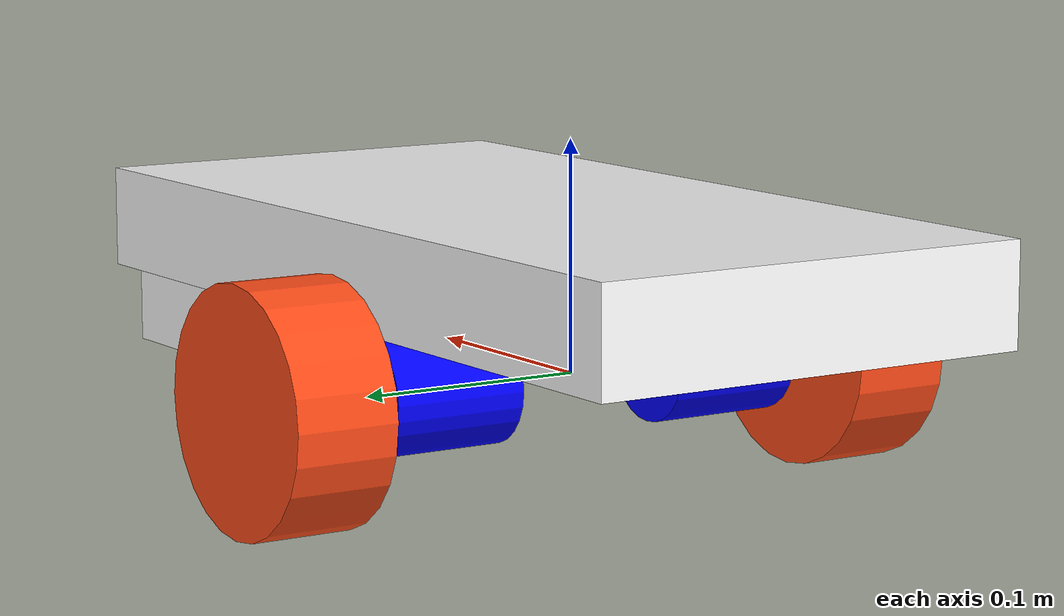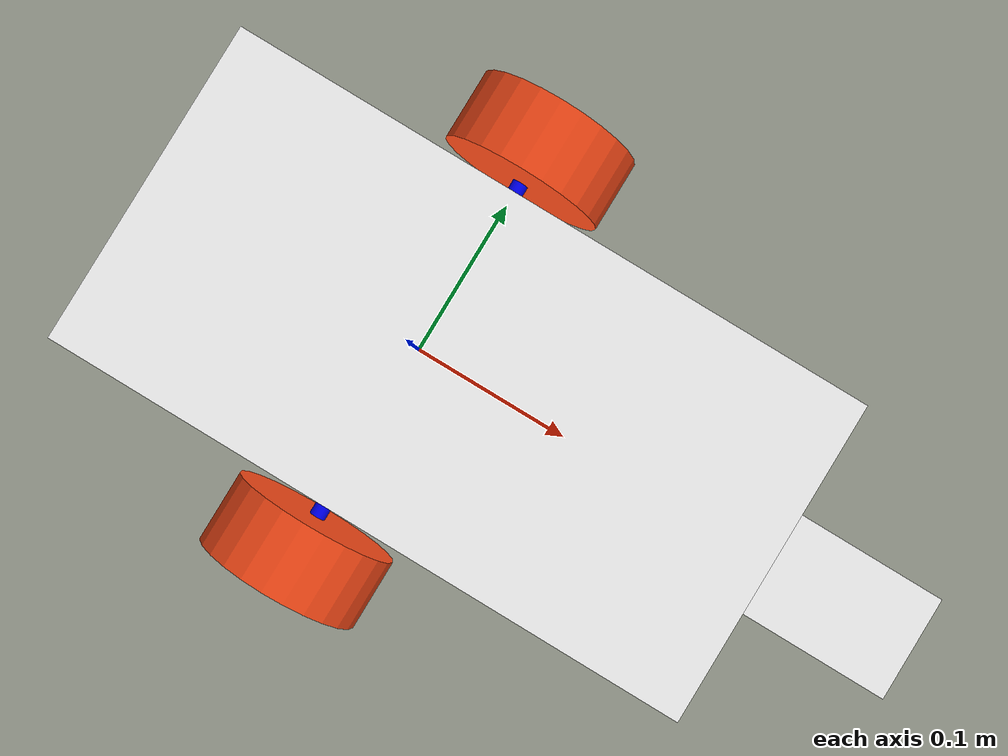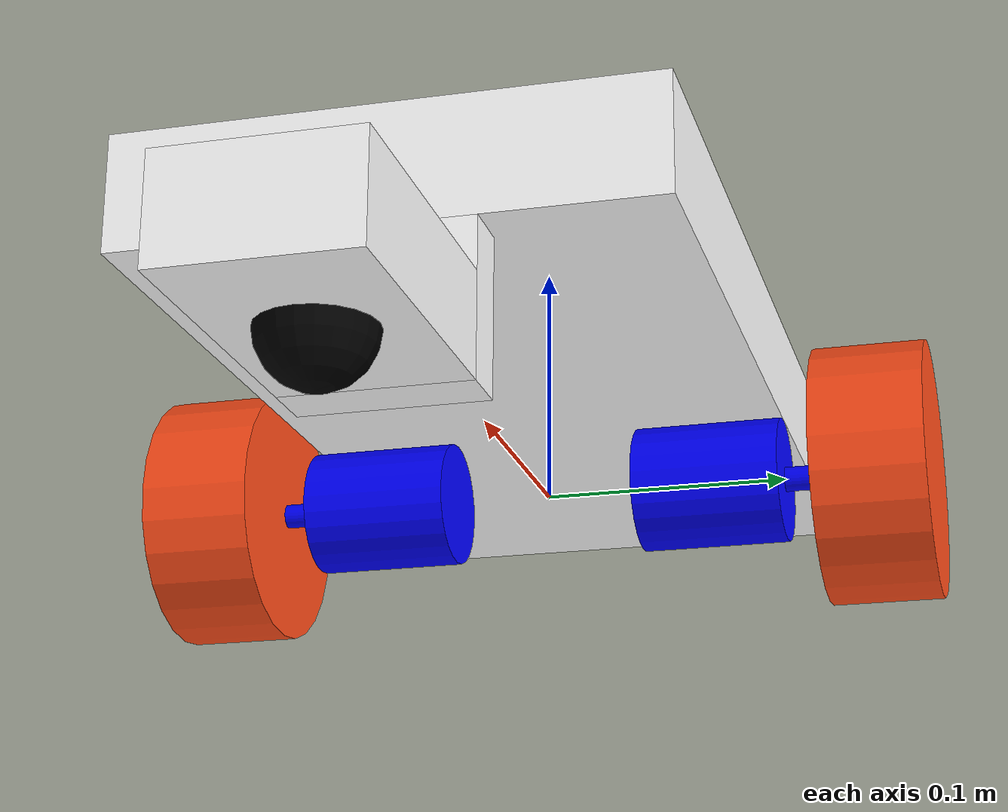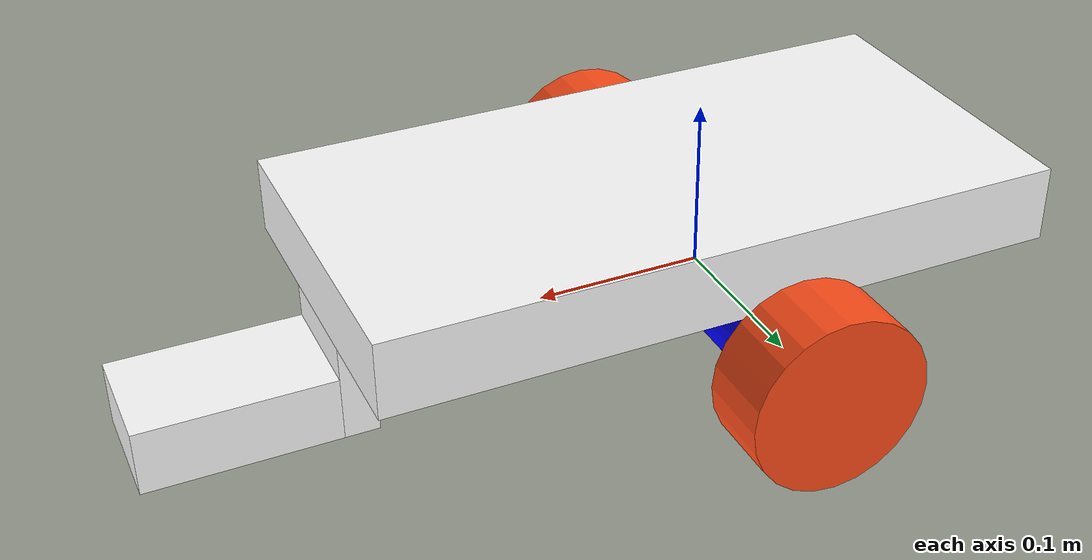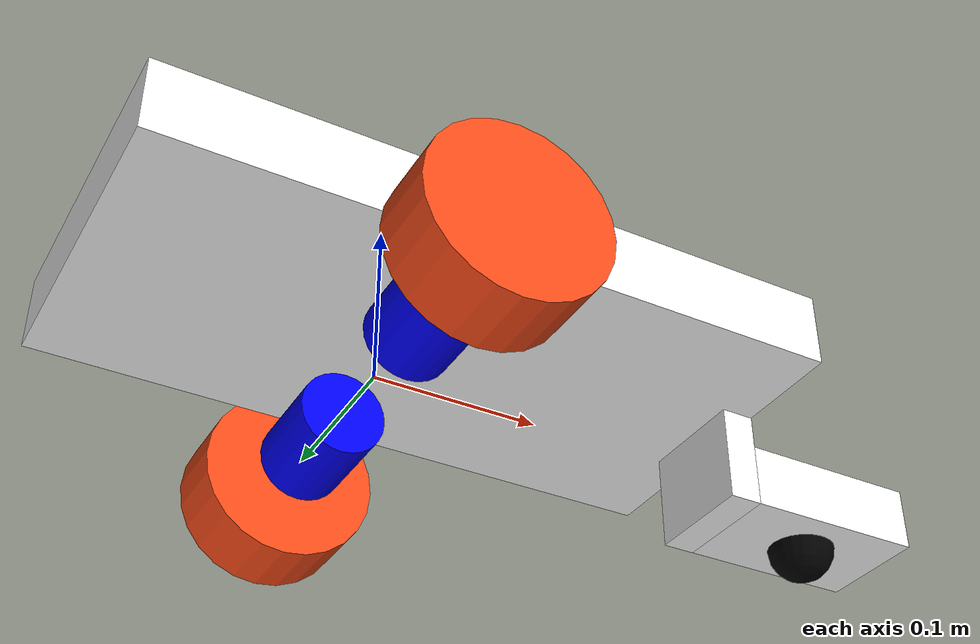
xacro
<?xml version="1.0"?>
<robot xmlns:xacro="http://www.ros.org/wiki/xacro">

    <xacro:include filename="inertial_macros.xacro"/>

    <material name="white">
        <color rgba="1 1 1 1"/>
    </material>

    <material name="orange">
        <color rgba="1 0.3 0.1 1"/>
    </material>

    <material name="blue">
        <color rgba="0 0 1 1"/>
    </material>

    <material name="black">
        <color rgba="0 0 0 1"/>
    </material>

    <material name="red">
        <color rgba="1 0 0 1"/>
    </material>

    <!-- BASE LINK -->

    <link name="base_link">
    </link>

    <joint name="base_footprint_joint" type="fixed">
        <parent link="base_link"/>
        <child link="base_footprint"/>
        <origin xyz="0 0 0" rpy="0.0 0.0 0.0"/>

    </joint>

    <link name="base_footprint">

    </link>

    <!-- CHASSIS LINK -->

    <joint name="chassis_joint" type="fixed">
        <parent link="base_link"/>
        <child link="chassis"/>
        <origin xyz="-0.17 0.0 0.0255"/>

    </joint>

    <link name="chassis">
        <visual>
            <origin xyz="0.2 0.0 0.0225"/>
            <geometry>
                <box size="0.4 0.2 0.045"/>
            </geometry>
            <material name="white"/>
        </visual>
        <collision>
            <origin xyz="0.2 0.0 0.0225"/>
            <geometry>
                <box size="0.4 0.2 0.045"/>
            </geometry>
        </collision>
        <xacro:inertial_box mass="0.6" x="0.4" y="0.2" z="0.045">
            <origin xyz="0.2 0.0 0.0225" rpy="0.0 0.0 0.0"/>
        </xacro:inertial_box>
    </link>

    <gazebo reference="chassis">
        <material>
            Gazebo/White
        </material>
    </gazebo>

    <!-- LEFT MOTOR LINK -->

    <joint name="left_motor_joint" type="fixed">
        <parent link="base_link"/>
        <child link="left_motor"/>
        <origin xyz="0.0 0.07 0.0" rpy="${-pi/2} 0.0 0.0"/>
    </joint>

    <link name="left_motor">
        <visual>
            <geometry>
                <cylinder radius="0.0255" length="0.06"/>
            </geometry>
            <material name="blue"/>
        </visual>
        <collision>
            <geometry>
                <cylinder radius="0.0255" length="0.06"/>
            </geometry>
        </collision>
        <xacro:inertial_cylinder mass="0.1" length="0.06" radius="0.0255">
            <origin xyz="0.0 0.0 0.0" rpy="0.0 0.0 0.0"/>
        </xacro:inertial_cylinder>
    </link>

    <gazebo reference="left_motor">
        <material>
            Gazebo/Blue
        </material>
    </gazebo>

    <!-- LEFT MOTOR SHAFT LINK -->

    <joint name="left_shaft_joint" type="fixed">
        <parent link="left_motor"/>
        <child link="left_shaft"/>
        <origin xyz="0.0 0.0 0.038"/>
    </joint>

    <link name="left_shaft">
        <visual>
            <geometry>
                <cylinder radius="0.005" length="0.016"/>
            </geometry>
            <material name="blue"/>
        </visual>
        <collision>
            <geometry>
                <cylinder radius="0.005" length="0.016"/>
            </geometry>
        </collision>
        <xacro:inertial_cylinder mass="0.005" length="0.016" radius="0.005">
            <origin xyz="0.0 0.0 0.0" rpy="0.0 0.0 0.0"/>
        </xacro:inertial_cylinder>
    </link>

    <gazebo reference="left_shaft">
        <material>
            Gazebo/Blue
        </material>
    </gazebo>

    <!-- LEFT WHEEL LINK -->

    <joint name="left_wheel_joint" type="continuous">
        <parent link="base_link"/>
        <child link="left_wheel"/>
        <origin xyz="0.0 0.1385 0.0" rpy="${-pi/2} 0.0 0.0"/>
        <axis xyz="0 0 1"/>
    </joint>

    <link name="left_wheel">
        <visual>
            <geometry>
                <cylinder radius="0.0525" length="0.045"/>
            </geometry>
            <material name="orange"/>
        </visual>
        <collision>
            <geometry>
                <sphere radius="0.0525"/>
            </geometry>
        </collision>
        <xacro:inertial_cylinder mass="0.1" length="0.045" radius="0.0525">
            <origin xyz="0.0 0.0 0.0" rpy="0.0 0.0 0.0"/>
        </xacro:inertial_cylinder>
    </link>

    <gazebo reference="left_wheel">
        <material>
            Gazebo/Orange
        </material>
    </gazebo>

    <!-- RIGHT MOTOR LINK -->

    <joint name="right_motor_joint" type="fixed">
        <parent link="base_link"/>
        <child link="right_motor"/>
        <origin xyz="0.0 -0.07 0.0" rpy="${pi/2} 0.0 0.0"/>
    </joint>

    <link name="right_motor">
        <visual>
            <geometry>
                <cylinder radius="0.0255" length="0.06"/>
            </geometry>
            <material name="blue"/>
        </visual>
        <collision>
            <geometry>
                <cylinder radius="0.0255" length="0.06"/>
            </geometry>
        </collision>
        <xacro:inertial_cylinder mass="0.1" length="0.06" radius="0.0255">
            <origin xyz="0.0 0.0 0.0" rpy="0.0 0.0 0.0"/>
        </xacro:inertial_cylinder>
    </link>

    <gazebo reference="right_motor">
        <material>
            Gazebo/Blue
        </material>
    </gazebo>

    <!-- RIGHT MOTOR SHAFT LINK -->

    <joint name="right_shaft_joint" type="fixed">
        <parent link="right_motor"/>
        <child link="right_shaft"/>
        <origin xyz="0.0 0.0 0.038"/>
    </joint>

    <link name="right_shaft">
        <visual>
            <geometry>
                <cylinder radius="0.005" length="0.016"/>
            </geometry>
            <material name="blue"/>
        </visual>
        <collision>
            <geometry>
                <cylinder radius="0.005" length="0.016"/>
            </geometry>
        </collision>
        <xacro:inertial_cylinder mass="0.005" length="0.016" radius="0.005">
            <origin xyz="0.0 0.0 0.0" rpy="0.0 0.0 0.0"/>
        </xacro:inertial_cylinder>
    </link>

    <gazebo reference="right_shaft">
        <material>
            Gazebo/Blue
        </material>
    </gazebo>

    <!-- RIGHT WHEEL LINK -->

    <joint name="right_wheel_joint" type="continuous">
        <parent link="base_link"/>
        <child link="right_wheel"/>
        <origin xyz="0.0 -0.1385 0.0" rpy="${pi/2} 0.0 0.0"/>
        <axis xyz="0 0 -1"/>
    </joint>

    <link name="right_wheel">
        <visual>
            <geometry>
                <cylinder radius="0.0525" length="0.045"/>
            </geometry>
            <material name="orange"/>
        </visual>
        <collision>
            <geometry>
                <sphere radius="0.0525"/>
            </geometry>
        </collision>
        <xacro:inertial_cylinder mass="0.1" length="0.045" radius="0.0525">
            <origin xyz="0.0 0.0 0.0" rpy="0.0 0.0 0.0"/>
        </xacro:inertial_cylinder>
    </link>

    <gazebo reference="right_wheel">
        <material>
            Gazebo/Orange
        </material>
    </gazebo>

    <!-- CASTER WHEEL LINK -->

    <joint name="cws_1_joint" type="fixed">
        <parent link="chassis"/>
        <child link="cws_1"/>
        <origin xyz="0.39 0.0 -0.029" rpy="0.0 0.0 0.0"/>
    </joint>

    <link name="cws_1">
        <visual>
            <geometry>
                <box size="0.02 0.068 0.058"/>
            </geometry>
            <material name="white"/>
        </visual>
        <collision>
            <geometry>
                <box size="0.02 0.068 0.058"/>
            </geometry>
        </collision>
        <xacro:inertial_box mass="0.01" x="0.02" y="0.068" z="0.058">
            <origin xyz="0.0 0.0 0.0" rpy="0.0 0.0 0.0"/>
        </xacro:inertial_box>
    </link>

    <joint name="cws_2_joint" type="fixed">
        <parent link="cws_1"/>
        <child link="cws_2"/>
        <origin xyz="0.065 0.0 -0.01" rpy="0.0 0.0 0.0"/>
    </joint>

    <link name="cws_2">
        <visual>
            <geometry>
                <box size="0.11 0.068 0.038"/>
            </geometry>
            <material name="white"/>
        </visual>
        <collision>
            <geometry>
                <box size="0.11 0.068 0.038"/>
            </geometry>
        </collision>
        <xacro:inertial_box mass="0.05" x="0.11" y="0.068" z="0.038">
            <origin xyz="0.0 0.0 0.0" rpy="0.0 0.0 0.0"/>
        </xacro:inertial_box>
    </link>

    <joint name="caster_wheel_joint" type="fixed">
        <parent link="cws_2"/>
        <child link="caster_wheel"/>
        <origin xyz="0.0 0.0 -0.019" rpy="0.0 0.0 0.0"/>
    </joint>

    <link name="caster_wheel">
        <visual>
            <geometry>
                <sphere radius="0.02"/>
            </geometry>
            <material name="black"/>
        </visual>
        <collision>
            <geometry>
                <sphere radius="0.02"/>
            </geometry>
        </collision>
        <xacro:inertial_sphere mass="0.01" radius="0.02">
            <origin xyz="0.0 0.0 0.0" rpy="0.0 0.0 0.0"/>
        </xacro:inertial_sphere>
    </link>

    <gazebo reference="caster_wheel">
        <material>
            Gazebo/Black
        </material>
        <mu1 value="0.001"/>
        <mu2 value="0.001"/>
    </gazebo>

</robot>
